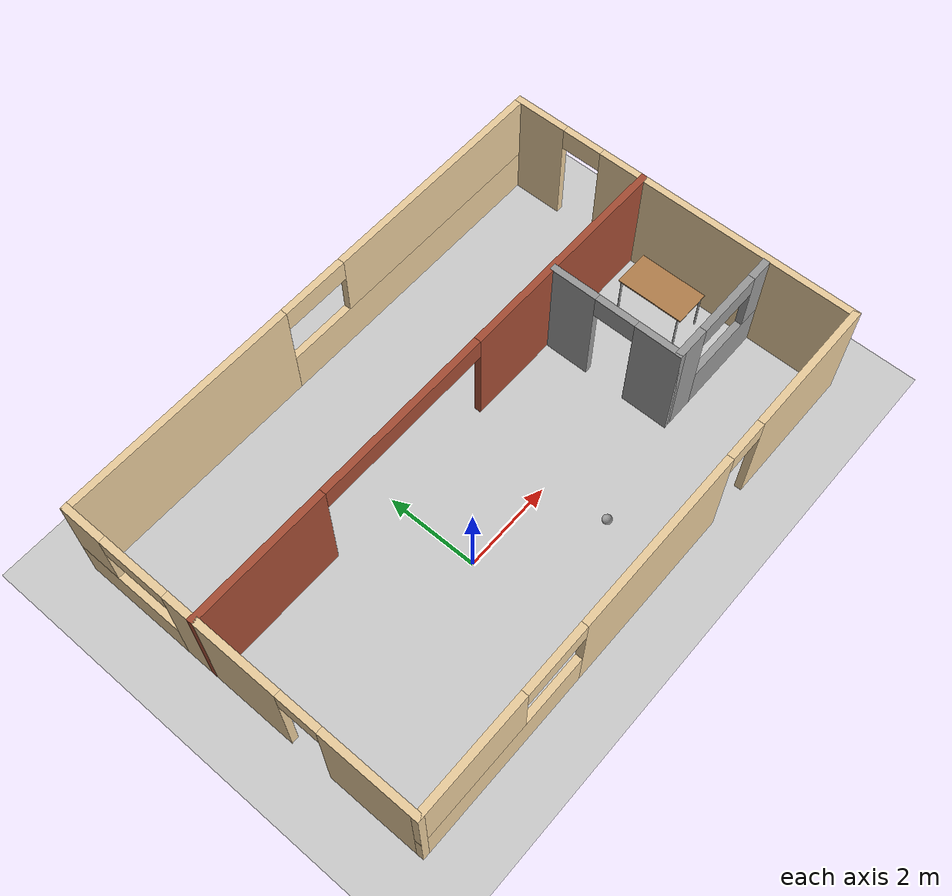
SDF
<sdf version="1.6">
 <world name="default">
  <plugin name="welcome" filename="libmy_script.so"/>
  <light name="sun" type="directional">
   <pose>0 0 10 0 -0 0</pose>
   <diffuse>0.8 0.8 0.8 1</diffuse>
   <specular>0.2 0.2 0.2 1</specular>
   <attenuation>
    <range>1000</range>
    <constant>0.9</constant>
    <linear>0.01</linear>
    <quadratic>0.001</quadratic>
   </attenuation>
   <direction>-0.5 0.1 -0.9</direction>
   <spot><inner_angle>0</inner_angle><outer_angle>0</outer_angle><falloff>0</falloff></spot>
  </light>
  <model name="ground_plane">
   <static>1</static>
   <link name="link">
    <collision name="collision">
     <geometry><plane><normal>0 0 1</normal><size>100 100</size></plane></geometry>
     <surface>
      <contact><collide_bitmask>65535</collide_bitmask></contact>
      <friction><ode><mu>100</mu><mu2>50</mu2></ode></friction>
     </surface>
    </collision>
    <visual name="visual">
     <cast_shadows>0</cast_shadows>
     <geometry><plane><normal>0 0 1</normal><size>100 100</size></plane></geometry>
     <material>
      <script><uri>file://media/materials/scripts/gazebo.material</uri><name>Gazebo/Grey</name></script>
     </material>
    </visual>
   </link>
  </model>
  <gravity>0 0 -9.8</gravity>
  <magnetic_field>6e-06 2.3e-05 -4.2e-05</magnetic_field>
  <atmosphere type="adiabatic"/>
  <physics name="default_physics" default="0" type="ode">
   <max_step_size>0.001</max_step_size>
   <real_time_factor>1</real_time_factor>
   <real_time_update_rate>1000</real_time_update_rate>
  </physics>
  <scene><ambient>0.4 0.4 0.4 1</ambient><background>0.7 0.7 0.7 1</background><shadows>1</shadows></scene>
  <spherical_coordinates>
   <surface_model>EARTH_WGS84</surface_model>
   <latitude_deg>0</latitude_deg>
   <longitude_deg>0</longitude_deg>
   <elevation>0</elevation>
   <heading_deg>0</heading_deg>
  </spherical_coordinates>
  <model name="myBuilding">
   <pose>1.46179 1.16687 0 0 -0 0</pose>
   <link name="Wall_10">
    <pose>4.4883 -2.03352 0 0 -0 0</pose>
    <visual name="Wall_10_Visual_0">
     <pose>-0.995451 0 1.25 0 -0 0</pose>
     <geometry><box><size>0.759098 0.15 2.5</size></box></geometry>
     <material>
      <script><uri>file://media/materials/scripts/gazebo.material</uri><name>Gazebo/Grey</name></script>
      <ambient>1 1 1 1</ambient>
     </material>
     <meta><layer>0</layer></meta>
    </visual>
    <collision name="Wall_10_Collision_0">
     <geometry><box><size>0.759098 0.15 2.5</size></box></geometry>
     <pose>-0.995451 0 1.25 0 -0 0</pose>
    </collision>
    <visual name="Wall_10_Visual_1">
     <pose>0.379549 0 0.5 0 -0 0</pose>
     <geometry><box><size>1.9909 0.15 1</size></box></geometry>
     <material>
      <script><uri>file://media/materials/scripts/gazebo.material</uri><name>Gazebo/Grey</name></script>
      <ambient>1 1 1 1</ambient>
     </material>
     <meta><layer>0</layer></meta>
    </visual>
    <collision name="Wall_10_Collision_1">
     <geometry><box><size>1.9909 0.15 1</size></box></geometry>
     <pose>0.379549 0 0.5 0 -0 0</pose>
    </collision>
    <visual name="Wall_10_Visual_2">
     <pose>1.12955 0 1.75 0 -0 0</pose>
     <geometry><box><size>0.490902 0.15 1.5</size></box></geometry>
     <material>
      <script><uri>file://media/materials/scripts/gazebo.material</uri><name>Gazebo/Grey</name></script>
      <ambient>1 1 1 1</ambient>
     </material>
     <meta><layer>0</layer></meta>
    </visual>
    <collision name="Wall_10_Collision_2">
     <geometry><box><size>0.490902 0.15 1.5</size></box></geometry>
     <pose>1.12955 0 1.75 0 -0 0</pose>
    </collision>
    <visual name="Wall_10_Visual_3">
     <pose>0.134098 0 2.25 0 -0 0</pose>
     <geometry><box><size>1.5 0.15 0.5</size></box></geometry>
     <material>
      <script><uri>file://media/materials/scripts/gazebo.material</uri><name>Gazebo/Grey</name></script>
      <ambient>1 1 1 1</ambient>
     </material>
     <meta><layer>0</layer></meta>
    </visual>
    <collision name="Wall_10_Collision_3">
     <geometry><box><size>1.5 0.15 0.5</size></box></geometry>
     <pose>0.134098 0 2.25 0 -0 0</pose>
    </collision>
   </link>
   <link name="Wall_2">
    <pose>0.000155 3.925 0 0 -0 0</pose>
    <visual name="Wall_2_Visual_0">
     <pose>-3.37694 0 1.25 0 -0 0</pose>
     <geometry><box><size>5.24613 0.15 2.5</size></box></geometry>
     <material>
      <script><uri>file://media/materials/scripts/gazebo.material</uri><name>Gazebo/Grey</name></script>
      <ambient>0.921569 0.807843 0.615686 1</ambient>
     </material>
     <meta><layer>0</layer></meta>
    </visual>
    <collision name="Wall_2_Collision_0">
     <geometry><box><size>5.24613 0.15 2.5</size></box></geometry>
     <pose>-3.37694 0 1.25 0 -0 0</pose>
    </collision>
    <visual name="Wall_2_Visual_1">
     <pose>2.62306 0 0.5 0 -0 0</pose>
     <geometry><box><size>6.75387 0.15 1</size></box></geometry>
     <material>
      <script><uri>file://media/materials/scripts/gazebo.material</uri><name>Gazebo/Grey</name></script>
      <ambient>0.921569 0.807843 0.615686 1</ambient>
     </material>
     <meta><layer>0</layer></meta>
    </visual>
    <collision name="Wall_2_Collision_1">
     <geometry><box><size>6.75387 0.15 1</size></box></geometry>
     <pose>2.62306 0 0.5 0 -0 0</pose>
    </collision>
    <visual name="Wall_2_Visual_2">
     <pose>3.37306 0 1.75 0 -0 0</pose>
     <geometry><box><size>5.25387 0.15 1.5</size></box></geometry>
     <material>
      <script><uri>file://media/materials/scripts/gazebo.material</uri><name>Gazebo/Grey</name></script>
      <ambient>0.921569 0.807843 0.615686 1</ambient>
     </material>
     <meta><layer>0</layer></meta>
    </visual>
    <collision name="Wall_2_Collision_2">
     <geometry><box><size>5.25387 0.15 1.5</size></box></geometry>
     <pose>3.37306 0 1.75 0 -0 0</pose>
    </collision>
    <visual name="Wall_2_Visual_3">
     <pose>-0.003875 0 2.25 0 -0 0</pose>
     <geometry><box><size>1.5 0.15 0.5</size></box></geometry>
     <material>
      <script><uri>file://media/materials/scripts/gazebo.material</uri><name>Gazebo/Grey</name></script>
      <ambient>0.921569 0.807843 0.615686 1</ambient>
     </material>
     <meta><layer>0</layer></meta>
    </visual>
    <collision name="Wall_2_Collision_3">
     <geometry><box><size>1.5 0.15 0.5</size></box></geometry>
     <pose>-0.003875 0 2.25 0 -0 0</pose>
    </collision>
   </link>
   <link name="Wall_3">
    <pose>5.92516 0 0 0 0 -1.5708</pose>
    <visual name="Wall_3_Visual_0">
     <pose>-3.38498 0 1.25 0 -0 0</pose>
     <geometry><box><size>1.23003 0.15 2.5</size></box></geometry>
     <material>
      <script><uri>file://media/materials/scripts/gazebo.material</uri><name>Gazebo/Grey</name></script>
      <ambient>0.921569 0.807843 0.615686 1</ambient>
     </material>
     <meta><layer>0</layer></meta>
    </visual>
    <collision name="Wall_3_Collision_0">
     <geometry><box><size>1.23003 0.15 2.5</size></box></geometry>
     <pose>-3.38498 0 1.25 0 -0 0</pose>
    </collision>
    <visual name="Wall_3_Visual_1">
     <pose>1.06502 0 1.25 0 -0 0</pose>
     <geometry><box><size>5.86997 0.15 2.5</size></box></geometry>
     <material>
      <script><uri>file://media/materials/scripts/gazebo.material</uri><name>Gazebo/Grey</name></script>
      <ambient>0.921569 0.807843 0.615686 1</ambient>
     </material>
     <meta><layer>0</layer></meta>
    </visual>
    <collision name="Wall_3_Collision_1">
     <geometry><box><size>5.86997 0.15 2.5</size></box></geometry>
     <pose>1.06502 0 1.25 0 -0 0</pose>
    </collision>
    <visual name="Wall_3_Visual_2">
     <pose>-2.31997 0 2.25 0 -0 0</pose>
     <geometry><box><size>0.9 0.15 0.5</size></box></geometry>
     <material>
      <script><uri>file://media/materials/scripts/gazebo.material</uri><name>Gazebo/Grey</name></script>
      <ambient>0.921569 0.807843 0.615686 1</ambient>
     </material>
     <meta><layer>0</layer></meta>
    </visual>
    <collision name="Wall_3_Collision_2">
     <geometry><box><size>0.9 0.15 0.5</size></box></geometry>
     <pose>-2.31997 0 2.25 0 -0 0</pose>
    </collision>
   </link>
   <link name="Wall_4">
    <pose>0.000155 -3.925 0 0 -0 3.14159</pose>
    <visual name="Wall_4_Visual_0">
     <pose>-4.48368 0 1.25 0 -0 0</pose>
     <geometry><box><size>3.03264 0.15 2.5</size></box></geometry>
     <material>
      <script><uri>file://media/materials/scripts/gazebo.material</uri><name>Gazebo/Grey</name></script>
      <ambient>0.921569 0.807843 0.615686 1</ambient>
     </material>
     <meta><layer>0</layer></meta>
    </visual>
    <collision name="Wall_4_Collision_0">
     <geometry><box><size>3.03264 0.15 2.5</size></box></geometry>
     <pose>-4.48368 0 1.25 0 -0 0</pose>
    </collision>
    <visual name="Wall_4_Visual_1">
     <pose>-0.076733 0 1.25 0 -0 0</pose>
     <geometry><box><size>3.98126 0.15 2.5</size></box></geometry>
     <material>
      <script><uri>file://media/materials/scripts/gazebo.material</uri><name>Gazebo/Grey</name></script>
      <ambient>0.921569 0.807843 0.615686 1</ambient>
     </material>
     <meta><layer>0</layer></meta>
    </visual>
    <collision name="Wall_4_Collision_1">
     <geometry><box><size>3.98126 0.15 2.5</size></box></geometry>
     <pose>-0.076733 0 1.25 0 -0 0</pose>
    </collision>
    <visual name="Wall_4_Visual_2">
     <pose>3.95695 0 0.5 0 -0 0</pose>
     <geometry><box><size>4.0861 0.15 1</size></box></geometry>
     <material>
      <script><uri>file://media/materials/scripts/gazebo.material</uri><name>Gazebo/Grey</name></script>
      <ambient>0.921569 0.807843 0.615686 1</ambient>
     </material>
     <meta><layer>0</layer></meta>
    </visual>
    <collision name="Wall_4_Collision_2">
     <geometry><box><size>4.0861 0.15 1</size></box></geometry>
     <pose>3.95695 0 0.5 0 -0 0</pose>
    </collision>
    <visual name="Wall_4_Visual_3">
     <pose>4.70695 0 1.75 0 -0 0</pose>
     <geometry><box><size>2.5861 0.15 1.5</size></box></geometry>
     <material>
      <script><uri>file://media/materials/scripts/gazebo.material</uri><name>Gazebo/Grey</name></script>
      <ambient>0.921569 0.807843 0.615686 1</ambient>
     </material>
     <meta><layer>0</layer></meta>
    </visual>
    <collision name="Wall_4_Collision_3">
     <geometry><box><size>2.5861 0.15 1.5</size></box></geometry>
     <pose>4.70695 0 1.75 0 -0 0</pose>
    </collision>
    <visual name="Wall_4_Visual_4">
     <pose>-2.51736 0 2.25 0 -0 0</pose>
     <geometry><box><size>0.9 0.15 0.5</size></box></geometry>
     <material>
      <script><uri>file://media/materials/scripts/gazebo.material</uri><name>Gazebo/Grey</name></script>
      <ambient>0.921569 0.807843 0.615686 1</ambient>
     </material>
     <meta><layer>0</layer></meta>
    </visual>
    <collision name="Wall_4_Collision_4">
     <geometry><box><size>0.9 0.15 0.5</size></box></geometry>
     <pose>-2.51736 0 2.25 0 -0 0</pose>
    </collision>
    <visual name="Wall_4_Visual_5">
     <pose>2.6639 0 2.25 0 -0 0</pose>
     <geometry><box><size>1.5 0.15 0.5</size></box></geometry>
     <material>
      <script><uri>file://media/materials/scripts/gazebo.material</uri><name>Gazebo/Grey</name></script>
      <ambient>0.921569 0.807843 0.615686 1</ambient>
     </material>
     <meta><layer>0</layer></meta>
    </visual>
    <collision name="Wall_4_Collision_5">
     <geometry><box><size>1.5 0.15 0.5</size></box></geometry>
     <pose>2.6639 0 2.25 0 -0 0</pose>
    </collision>
   </link>
   <link name="Wall_5">
    <pose>-5.92485 0 0 0 -0 1.5708</pose>
    <visual name="Wall_5_Visual_0">
     <pose>-2.95016 0 1.25 0 -0 0</pose>
     <geometry><box><size>2.09968 0.15 2.5</size></box></geometry>
     <material>
      <script><uri>file://media/materials/scripts/gazebo.material</uri><name>Gazebo/Grey</name></script>
      <ambient>0.921569 0.807843 0.615686 1</ambient>
     </material>
     <meta><layer>0</layer></meta>
    </visual>
    <collision name="Wall_5_Collision_0">
     <geometry><box><size>2.09968 0.15 2.5</size></box></geometry>
     <pose>-2.95016 0 1.25 0 -0 0</pose>
    </collision>
    <visual name="Wall_5_Visual_1">
     <pose>0.273258 0 1.25 0 -0 0</pose>
     <geometry><box><size>2.54716 0.15 2.5</size></box></geometry>
     <material>
      <script><uri>file://media/materials/scripts/gazebo.material</uri><name>Gazebo/Grey</name></script>
      <ambient>0.921569 0.807843 0.615686 1</ambient>
     </material>
     <meta><layer>0</layer></meta>
    </visual>
    <collision name="Wall_5_Collision_1">
     <geometry><box><size>2.54716 0.15 2.5</size></box></geometry>
     <pose>0.273258 0 1.25 0 -0 0</pose>
    </collision>
    <visual name="Wall_5_Visual_2">
     <pose>2.77342 0 0.5 0 -0 0</pose>
     <geometry><box><size>2.45316 0.15 1</size></box></geometry>
     <material>
      <script><uri>file://media/materials/scripts/gazebo.material</uri><name>Gazebo/Grey</name></script>
      <ambient>0.921569 0.807843 0.615686 1</ambient>
     </material>
     <meta><layer>0</layer></meta>
    </visual>
    <collision name="Wall_5_Collision_2">
     <geometry><box><size>2.45316 0.15 1</size></box></geometry>
     <pose>2.77342 0 0.5 0 -0 0</pose>
    </collision>
    <visual name="Wall_5_Visual_3">
     <pose>3.52342 0 1.75 0 -0 0</pose>
     <geometry><box><size>0.953163 0.15 1.5</size></box></geometry>
     <material>
      <script><uri>file://media/materials/scripts/gazebo.material</uri><name>Gazebo/Grey</name></script>
      <ambient>0.921569 0.807843 0.615686 1</ambient>
     </material>
     <meta><layer>0</layer></meta>
    </visual>
    <collision name="Wall_5_Collision_3">
     <geometry><box><size>0.953163 0.15 1.5</size></box></geometry>
     <pose>3.52342 0 1.75 0 -0 0</pose>
    </collision>
    <visual name="Wall_5_Visual_4">
     <pose>-1.45032 0 2.25 0 -0 0</pose>
     <geometry><box><size>0.9 0.15 0.5</size></box></geometry>
     <material>
      <script><uri>file://media/materials/scripts/gazebo.material</uri><name>Gazebo/Grey</name></script>
      <ambient>0.921569 0.807843 0.615686 1</ambient>
     </material>
     <meta><layer>0</layer></meta>
    </visual>
    <collision name="Wall_5_Collision_4">
     <geometry><box><size>0.9 0.15 0.5</size></box></geometry>
     <pose>-1.45032 0 2.25 0 -0 0</pose>
    </collision>
    <visual name="Wall_5_Visual_5">
     <pose>2.29684 0 2.25 0 -0 0</pose>
     <geometry><box><size>1.5 0.15 0.5</size></box></geometry>
     <material>
      <script><uri>file://media/materials/scripts/gazebo.material</uri><name>Gazebo/Grey</name></script>
      <ambient>0.921569 0.807843 0.615686 1</ambient>
     </material>
     <meta><layer>0</layer></meta>
    </visual>
    <collision name="Wall_5_Collision_5">
     <geometry><box><size>1.5 0.15 0.5</size></box></geometry>
     <pose>2.29684 0 2.25 0 -0 0</pose>
    </collision>
   </link>
   <link name="Wall_7">
    <pose>-0.000156 0.88587 0 0 -0 0</pose>
    <visual name="Wall_7_Visual_0">
     <pose>-4.46439 0 1.25 0 -0 0</pose>
     <geometry><box><size>3.07121 0.15 2.5</size></box></geometry>
     <material>
      <script><uri>file://media/materials/scripts/gazebo.material</uri><name>Gazebo/Bricks</name></script>
      <ambient>1 1 1 1</ambient>
     </material>
     <meta><layer>0</layer></meta>
    </visual>
    <collision name="Wall_7_Collision_0">
     <geometry><box><size>3.07121 0.15 2.5</size></box></geometry>
     <pose>-4.46439 0 1.25 0 -0 0</pose>
    </collision>
    <visual name="Wall_7_Visual_1">
     <pose>3.53561 0 1.25 0 -0 0</pose>
     <geometry><box><size>4.92879 0.15 2.5</size></box></geometry>
     <material>
      <script><uri>file://media/materials/scripts/gazebo.material</uri><name>Gazebo/Bricks</name></script>
      <ambient>1 1 1 1</ambient>
     </material>
     <meta><layer>0</layer></meta>
    </visual>
    <collision name="Wall_7_Collision_1">
     <geometry><box><size>4.92879 0.15 2.5</size></box></geometry>
     <pose>3.53561 0 1.25 0 -0 0</pose>
    </collision>
    <visual name="Wall_7_Visual_2">
     <pose>-0.928789 0 2.25 0 -0 0</pose>
     <geometry><box><size>4 0.15 0.5</size></box></geometry>
     <material>
      <script><uri>file://media/materials/scripts/gazebo.material</uri><name>Gazebo/Bricks</name></script>
      <ambient>1 1 1 1</ambient>
     </material>
     <meta><layer>0</layer></meta>
    </visual>
    <collision name="Wall_7_Collision_2">
     <geometry><box><size>4 0.15 0.5</size></box></geometry>
     <pose>-0.928789 0 2.25 0 -0 0</pose>
    </collision>
   </link>
   <link name="Wall_9">
    <pose>3.1883 -0.608521 0 0 0 -1.5708</pose>
    <visual name="Wall_9_Visual_0">
     <pose>-0.970451 0 1.25 0 -0 0</pose>
     <geometry><box><size>1.0591 0.15 2.5</size></box></geometry>
     <material>
      <script><uri>file://media/materials/scripts/gazebo.material</uri><name>Gazebo/Grey</name></script>
      <ambient>1 1 1 1</ambient>
     </material>
     <meta><layer>0</layer></meta>
    </visual>
    <collision name="Wall_9_Collision_0">
     <geometry><box><size>1.0591 0.15 2.5</size></box></geometry>
     <pose>-0.970451 0 1.25 0 -0 0</pose>
    </collision>
    <visual name="Wall_9_Visual_1">
     <pose>0.979549 0 1.25 0 -0 0</pose>
     <geometry><box><size>1.0409 0.15 2.5</size></box></geometry>
     <material>
      <script><uri>file://media/materials/scripts/gazebo.material</uri><name>Gazebo/Grey</name></script>
      <ambient>1 1 1 1</ambient>
     </material>
     <meta><layer>0</layer></meta>
    </visual>
    <collision name="Wall_9_Collision_1">
     <geometry><box><size>1.0409 0.15 2.5</size></box></geometry>
     <pose>0.979549 0 1.25 0 -0 0</pose>
    </collision>
    <visual name="Wall_9_Visual_2">
     <pose>0.009098 0 2.25 0 -0 0</pose>
     <geometry><box><size>0.9 0.15 0.5</size></box></geometry>
     <material>
      <script><uri>file://media/materials/scripts/gazebo.material</uri><name>Gazebo/Grey</name></script>
      <ambient>1 1 1 1</ambient>
     </material>
     <meta><layer>0</layer></meta>
    </visual>
    <collision name="Wall_9_Collision_2">
     <geometry><box><size>0.9 0.15 0.5</size></box></geometry>
     <pose>0.009098 0 2.25 0 -0 0</pose>
    </collision>
   </link>
   <static>1</static>
  </model>
  <model name="table">
   <static>1</static>
   <link name="link">
    <collision name="surface">
     <pose>0 0 1 0 -0 0</pose>
     <geometry><box><size>1.5 0.8 0.03</size></box></geometry>
     <surface><friction><ode><mu>0.6</mu><mu2>0.6</mu2></ode></friction></surface>
    </collision>
    <visual name="visual1">
     <pose>0 0 1 0 -0 0</pose>
     <geometry><box><size>1.5 0.8 0.03</size></box></geometry>
     <material>
      <script><uri>file://media/materials/scripts/gazebo.material</uri><name>Gazebo/Wood</name></script>
     </material>
    </visual>
    <collision name="front_left_leg">
     <pose>0.68 0.38 0.5 0 -0 0</pose>
     <geometry><cylinder><radius>0.02</radius><length>1</length></cylinder></geometry>
    </collision>
    <visual name="front_left_leg">
     <pose>0.68 0.38 0.5 0 -0 0</pose>
     <geometry><cylinder><radius>0.02</radius><length>1</length></cylinder></geometry>
     <material>
      <script><uri>file://media/materials/scripts/gazebo.material</uri><name>Gazebo/Grey</name></script>
     </material>
    </visual>
    <collision name="front_right_leg">
     <pose>0.68 -0.38 0.5 0 -0 0</pose>
     <geometry><cylinder><radius>0.02</radius><length>1</length></cylinder></geometry>
    </collision>
    <visual name="front_right_leg">
     <pose>0.68 -0.38 0.5 0 -0 0</pose>
     <geometry><cylinder><radius>0.02</radius><length>1</length></cylinder></geometry>
     <material>
      <script><uri>file://media/materials/scripts/gazebo.material</uri><name>Gazebo/Grey</name></script>
     </material>
    </visual>
    <collision name="back_right_leg">
     <pose>-0.68 -0.38 0.5 0 -0 0</pose>
     <geometry><cylinder><radius>0.02</radius><length>1</length></cylinder></geometry>
    </collision>
    <visual name="back_right_leg">
     <pose>-0.68 -0.38 0.5 0 -0 0</pose>
     <geometry><cylinder><radius>0.02</radius><length>1</length></cylinder></geometry>
     <material>
      <script><uri>file://media/materials/scripts/gazebo.material</uri><name>Gazebo/Grey</name></script>
     </material>
    </visual>
    <collision name="back_left_leg">
     <pose>-0.68 0.38 0.5 0 -0 0</pose>
     <geometry><cylinder><radius>0.02</radius><length>1</length></cylinder></geometry>
    </collision>
    <visual name="back_left_leg">
     <pose>-0.68 0.38 0.5 0 -0 0</pose>
     <geometry><cylinder><radius>0.02</radius><length>1</length></cylinder></geometry>
     <material>
      <script><uri>file://media/materials/scripts/gazebo.material</uri><name>Gazebo/Grey</name></script>
     </material>
    </visual>
   </link>
   <pose>6.5188 0.736819 0 0 0 -1.5707</pose>
  </model>
  <model name="my_ball">
   <link name="link_0">
    <inertial>
     <mass>1</mass>
     <inertia><ixx>0.1</ixx><ixy>0</ixy><ixz>0</ixz><iyy>0.1</iyy><iyz>0</iyz><izz>0.1</izz></inertia>
    </inertial>
    <visual name="visual">
     <geometry><sphere><radius>0.1</radius></sphere></geometry>
     <material>
      <lighting>1</lighting>
      <script><uri>file://media/materials/scripts/gazebo.material</uri><name>Gazebo/Grey</name></script>
      <shader type="pixel"><normal_map>__default__</normal_map></shader>
      <ambient>1 1 1 1</ambient>
      <diffuse>1 1 1 1</diffuse>
      <specular>1 1 1 1</specular>
      <emissive>1 1 1 1</emissive>
     </material>
    </visual>
    <collision name="collision">
     <geometry><sphere><radius>0.1</radius></sphere></geometry>
     <surface>
      <friction>
       <ode><mu>1</mu><mu2>1</mu2><fdir1>0 0 0</fdir1><slip1>0</slip1><slip2>0</slip2></ode>
       <torsional>
        <coefficient>1</coefficient>
        <patch_radius>0</patch_radius>
        <surface_radius>0</surface_radius>
        <use_patch_radius>1</use_patch_radius>
        <ode><slip>0</slip></ode>
       </torsional>
      </friction>
      <bounce><restitution_coefficient>0</restitution_coefficient><threshold>1e+06</threshold></bounce>
      <contact>
       <collide_without_contact>0</collide_without_contact>
       <collide_without_contact_bitmask>1</collide_without_contact_bitmask>
       <collide_bitmask>1</collide_bitmask>
       <ode>
        <soft_cfm>0</soft_cfm>
        <soft_erp>0.2</soft_erp>
        <kp>1e+13</kp>
        <kd>1</kd>
        <max_vel>0.01</max_vel>
        <min_depth>0</min_depth>
       </ode>
       <bullet>
        <split_impulse>1</split_impulse>
        <split_impulse_penetration_threshold>-0.01</split_impulse_penetration_threshold>
        <soft_cfm>0</soft_cfm>
        <soft_erp>0.2</soft_erp>
        <kp>1e+13</kp>
        <kd>1</kd>
       </bullet>
      </contact>
     </surface>
    </collision>
   </link>
   <static>0</static>
   <pose>2.27427 -1.32895 0.1 0 -0 0</pose>
  </model>
 </world>
</sdf>
